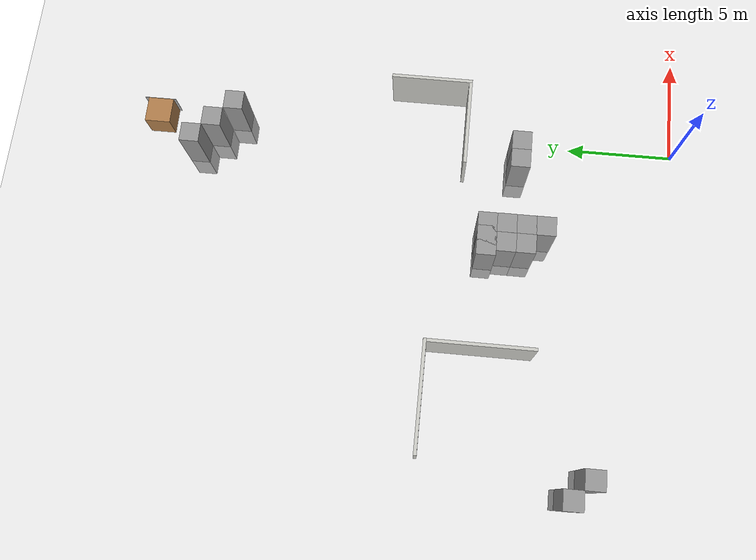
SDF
<sdf version="1.7">
 <world name="default">
  <model name="ground_plane">
   <static>1</static>
   <link name="link">
    <collision name="collision">
     <geometry><plane><normal>0 0 1</normal><size>100 100</size></plane></geometry>
     <surface><friction><ode><mu>100</mu><mu2>50</mu2></ode></friction></surface>
    </collision>
    <visual name="visual">
     <cast_shadows>0</cast_shadows>
     <geometry><plane><normal>0 0 1</normal><size>100 100</size></plane></geometry>
     <material>
      <script><uri>file://media/materials/scripts/gazebo.material</uri><name>Gazebo/Grey</name></script>
     </material>
    </visual>
   </link>
  </model>
  <model name="unit_box_0">
   <link name="link">
    <inertial>
     <mass>1</mass>
     <inertia>
      <ixx>0.166667</ixx>
      <ixy>0</ixy>
      <ixz>0</ixz>
      <iyy>0.166667</iyy>
      <iyz>0</iyz>
      <izz>0.166667</izz>
     </inertia>
    </inertial>
    <visual name="visual">
     <geometry><box><size>1.2 1.2 1.2</size></box></geometry>
     <material>
      <script><uri>file://media/materials/scripts/gazebo.material</uri><name>Gazebo/Wood</name></script>
      <shader type="pixel"><normal_map>__default__</normal_map></shader>
      <ambient>1 1 1 1</ambient>
      <diffuse>0.7 0.7 0.7 1</diffuse>
      <specular>0.01 0.01 0.01 1</specular>
      <emissive>0 0 0 1</emissive>
     </material>
    </visual>
    <collision name="collision">
     <geometry><box><size>1.2 1.2 1.2</size></box></geometry>
     <surface>
      <friction>
       <ode><mu>1</mu><mu2>1</mu2><fdir1>0 0 0</fdir1><slip1>0</slip1><slip2>0</slip2></ode>
       <torsional>
        <coefficient>1</coefficient>
        <patch_radius>0</patch_radius>
        <surface_radius>0</surface_radius>
        <use_patch_radius>1</use_patch_radius>
        <ode><slip>0</slip></ode>
       </torsional>
      </friction>
      <bounce><restitution_coefficient>0</restitution_coefficient><threshold>1e+06</threshold></bounce>
      <contact>
       <collide_without_contact>0</collide_without_contact>
       <collide_without_contact_bitmask>1</collide_without_contact_bitmask>
       <collide_bitmask>1</collide_bitmask>
       <ode>
        <soft_cfm>0</soft_cfm>
        <soft_erp>0.2</soft_erp>
        <kp>1e+13</kp>
        <kd>1</kd>
        <max_vel>0.01</max_vel>
        <min_depth>0</min_depth>
       </ode>
       <bullet>
        <split_impulse>1</split_impulse>
        <split_impulse_penetration_threshold>-0.01</split_impulse_penetration_threshold>
        <soft_cfm>0</soft_cfm>
        <soft_erp>0.2</soft_erp>
        <kp>1e+13</kp>
        <kd>1</kd>
       </bullet>
      </contact>
     </surface>
    </collision>
   </link>
   <static>0</static>
   <pose>-0.130923 24.9978 0.6 -0 -0 -0</pose>
  </model>
  <model name="unit_box_1_clone">
   <link name="link">
    <inertial>
     <mass>1</mass>
     <inertia>
      <ixx>0.166667</ixx>
      <ixy>0</ixy>
      <ixz>0</ixz>
      <iyy>0.166667</iyy>
      <iyz>0</iyz>
      <izz>0.166667</izz>
     </inertia>
    </inertial>
    <visual name="visual">
     <geometry><box><size>0.02 1.5 1.2</size></box></geometry>
     <material>
      <script><name>Gazebo/YunXi</name><uri>file://media/materials/scripts/gazebo.material</uri></script>
      <shader type="pixel"><normal_map>__default__</normal_map></shader>
      <ambient>1 1 1 1</ambient>
      <diffuse>0.7 0.7 0.7 1</diffuse>
      <specular>0.01 0.01 0.01 1</specular>
      <emissive>0 0 0 1</emissive>
     </material>
    </visual>
    <collision name="collision">
     <geometry><box><size>0.02 1.5 1.2</size></box></geometry>
     <surface>
      <friction>
       <ode><mu>1</mu><mu2>1</mu2><fdir1>0 0 0</fdir1><slip1>0</slip1><slip2>0</slip2></ode>
       <torsional>
        <coefficient>1</coefficient>
        <patch_radius>0</patch_radius>
        <surface_radius>0</surface_radius>
        <use_patch_radius>1</use_patch_radius>
        <ode><slip>0</slip></ode>
       </torsional>
      </friction>
      <bounce><restitution_coefficient>0</restitution_coefficient><threshold>1e+06</threshold></bounce>
      <contact>
       <collide_without_contact>0</collide_without_contact>
       <collide_without_contact_bitmask>1</collide_without_contact_bitmask>
       <collide_bitmask>1</collide_bitmask>
       <ode>
        <soft_cfm>0</soft_cfm>
        <soft_erp>0.2</soft_erp>
        <kp>1e+13</kp>
        <kd>1</kd>
        <max_vel>0.01</max_vel>
        <min_depth>0</min_depth>
       </ode>
       <bullet>
        <split_impulse>1</split_impulse>
        <split_impulse_penetration_threshold>-0.01</split_impulse_penetration_threshold>
        <soft_cfm>0</soft_cfm>
        <soft_erp>0.2</soft_erp>
        <kp>1e+13</kp>
        <kd>1</kd>
       </bullet>
      </contact>
     </surface>
    </collision>
   </link>
   <static>0</static>
   <pose>0.481184 25.0352 0.599995 7e-06 1.6e-05 0</pose>
  </model>
  <model name="Untitled_clone_clone_clone_clone">
   <link name="Wall_2_clone">
    <pose>-0.408024 -2.20516 0 0 -0 0</pose>
    <inertial>
     <mass>1</mass>
     <inertia><ixx>1</ixx><ixy>0</ixy><ixz>0</ixz><iyy>1</iyy><iyz>0</iyz><izz>1</izz></inertia>
    </inertial>
    <visual name="Wall_2_Visual">
     <pose>0 0 1.25 0 -0 0</pose>
     <geometry><box><size>4.2 0.15 2.5</size></box></geometry>
     <material>
      <script><uri>file://media/materials/scripts/gazebo.material</uri><name>Gazebo/CeilingTiled</name></script>
      <ambient>1 1 1 1</ambient>
      <shader type="pixel"><normal_map>__default__</normal_map></shader>
      <diffuse>1 1 1 1</diffuse>
      <specular>0 0 0 1</specular>
      <emissive>0 0 0 1</emissive>
     </material>
     <meta><layer>0</layer></meta>
    </visual>
    <collision name="Wall_2_Collision">
     <pose>0 0 1.25 0 -0 0</pose>
     <geometry><box><size>4.2 0.15 2.5</size></box></geometry>
     <surface>
      <friction>
       <ode><mu>1</mu><mu2>1</mu2><fdir1>0 0 0</fdir1><slip1>0</slip1><slip2>0</slip2></ode>
       <torsional>
        <coefficient>1</coefficient>
        <patch_radius>0</patch_radius>
        <surface_radius>0</surface_radius>
        <use_patch_radius>1</use_patch_radius>
        <ode><slip>0</slip></ode>
       </torsional>
      </friction>
      <bounce><restitution_coefficient>0</restitution_coefficient><threshold>1e+06</threshold></bounce>
      <contact>
       <collide_without_contact>0</collide_without_contact>
       <collide_without_contact_bitmask>1</collide_without_contact_bitmask>
       <collide_bitmask>1</collide_bitmask>
       <ode>
        <soft_cfm>0</soft_cfm>
        <soft_erp>0.2</soft_erp>
        <kp>1e+13</kp>
        <kd>1</kd>
        <max_vel>0.01</max_vel>
        <min_depth>0</min_depth>
       </ode>
       <bullet>
        <split_impulse>1</split_impulse>
        <split_impulse_penetration_threshold>-0.01</split_impulse_penetration_threshold>
        <soft_cfm>0</soft_cfm>
        <soft_erp>0.2</soft_erp>
        <kp>1e+13</kp>
        <kd>1</kd>
       </bullet>
      </contact>
     </surface>
    </collision>
   </link>
   <link name="Wall_2_clone_clone_clone_clone_clone">
    <pose>1.61868 -0.372186 0 0 -0 1.57</pose>
    <inertial>
     <mass>1</mass>
     <inertia><ixx>1</ixx><ixy>0</ixy><ixz>0</ixz><iyy>1</iyy><iyz>0</iyz><izz>1</izz></inertia>
    </inertial>
    <visual name="Wall_2_Visual">
     <pose>0 0 1.25 0 -0 0</pose>
     <geometry><box><size>3.8 0.15 2.5</size></box></geometry>
     <material>
      <script><uri>file://media/materials/scripts/gazebo.material</uri><name>Gazebo/CeilingTiled</name></script>
      <ambient>1 1 1 1</ambient>
      <shader type="pixel"><normal_map>__default__</normal_map></shader>
      <diffuse>1 1 1 1</diffuse>
      <specular>0 0 0 1</specular>
      <emissive>0 0 0 1</emissive>
     </material>
     <meta><layer>0</layer></meta>
    </visual>
    <collision name="Wall_2_Collision">
     <pose>0 0 1.25 0 -0 0</pose>
     <geometry><box><size>3.8 0.15 2.5</size></box></geometry>
     <surface>
      <friction>
       <ode><mu>1</mu><mu2>1</mu2><fdir1>0 0 0</fdir1><slip1>0</slip1><slip2>0</slip2></ode>
       <torsional>
        <coefficient>1</coefficient>
        <patch_radius>0</patch_radius>
        <surface_radius>0</surface_radius>
        <use_patch_radius>1</use_patch_radius>
        <ode><slip>0</slip></ode>
       </torsional>
      </friction>
      <bounce><restitution_coefficient>0</restitution_coefficient><threshold>1e+06</threshold></bounce>
      <contact>
       <collide_without_contact>0</collide_without_contact>
       <collide_without_contact_bitmask>1</collide_without_contact_bitmask>
       <collide_bitmask>1</collide_bitmask>
       <ode>
        <soft_cfm>0</soft_cfm>
        <soft_erp>0.2</soft_erp>
        <kp>1e+13</kp>
        <kd>1</kd>
        <max_vel>0.01</max_vel>
        <min_depth>0</min_depth>
       </ode>
       <bullet>
        <split_impulse>1</split_impulse>
        <split_impulse_penetration_threshold>-0.01</split_impulse_penetration_threshold>
        <soft_cfm>0</soft_cfm>
        <soft_erp>0.2</soft_erp>
        <kp>1e+13</kp>
        <kd>1</kd>
       </bullet>
      </contact>
     </surface>
    </collision>
   </link>
   <static>1</static>
   <pose>0.41018 12.2822 0 0 -0 0</pose>
  </model>
  <model name="unit_box">
   <link name="link_clone_0_clone_clone_0">
    <inertial>
     <mass>1</mass>
     <inertia>
      <ixx>0.166667</ixx>
      <ixy>0</ixy>
      <ixz>0</ixz>
      <iyy>0.166667</iyy>
      <iyz>0</iyz>
      <izz>0.166667</izz>
     </inertia>
    </inertial>
    <pose>-9.13666 8.99649 0 0 -0 0</pose>
    <visual name="visual">
     <geometry><box><size>0.9 0.9 4</size></box></geometry>
     <material>
      <script><name>Gazebo/Grey</name><uri>file://media/materials/scripts/gazebo.material</uri></script>
      <shader type="pixel"><normal_map>__default__</normal_map></shader>
      <ambient>0.3 0.3 0.3 1</ambient>
      <diffuse>0.7 0.7 0.7 1</diffuse>
      <specular>0.01 0.01 0.01 1</specular>
      <emissive>0 0 0 1</emissive>
     </material>
    </visual>
    <collision name="collision">
     <geometry><box><size>0.9 0.9 4</size></box></geometry>
     <surface>
      <friction>
       <ode><mu>1</mu><mu2>1</mu2><fdir1>0 0 0</fdir1><slip1>0</slip1><slip2>0</slip2></ode>
       <torsional>
        <coefficient>1</coefficient>
        <patch_radius>0</patch_radius>
        <surface_radius>0</surface_radius>
        <use_patch_radius>1</use_patch_radius>
        <ode><slip>0</slip></ode>
       </torsional>
      </friction>
      <bounce><restitution_coefficient>0</restitution_coefficient><threshold>1e+06</threshold></bounce>
      <contact>
       <collide_without_contact>0</collide_without_contact>
       <collide_without_contact_bitmask>1</collide_without_contact_bitmask>
       <collide_bitmask>1</collide_bitmask>
       <ode>
        <soft_cfm>0</soft_cfm>
        <soft_erp>0.2</soft_erp>
        <kp>1e+13</kp>
        <kd>1</kd>
        <max_vel>0.01</max_vel>
        <min_depth>0</min_depth>
       </ode>
       <bullet>
        <split_impulse>1</split_impulse>
        <split_impulse_penetration_threshold>-0.01</split_impulse_penetration_threshold>
        <soft_cfm>0</soft_cfm>
        <soft_erp>0.2</soft_erp>
        <kp>1e+13</kp>
        <kd>1</kd>
       </bullet>
      </contact>
     </surface>
    </collision>
   </link>
   <link name="link_clone_0_clone_clone_1">
    <inertial>
     <mass>1</mass>
     <inertia>
      <ixx>0.166667</ixx>
      <ixy>0</ixy>
      <ixz>0</ixz>
      <iyy>0.166667</iyy>
      <iyz>0</iyz>
      <izz>0.166667</izz>
     </inertia>
    </inertial>
    <pose>-8.25334 8.99525 0 0 -0 0</pose>
    <visual name="visual">
     <geometry><box><size>0.9 0.9 4</size></box></geometry>
     <material>
      <script><name>Gazebo/Grey</name><uri>file://media/materials/scripts/gazebo.material</uri></script>
      <shader type="pixel"><normal_map>__default__</normal_map></shader>
      <ambient>0.3 0.3 0.3 1</ambient>
      <diffuse>0.7 0.7 0.7 1</diffuse>
      <specular>0.01 0.01 0.01 1</specular>
      <emissive>0 0 0 1</emissive>
     </material>
    </visual>
    <collision name="collision">
     <geometry><box><size>0.9 0.9 4</size></box></geometry>
     <surface>
      <friction>
       <ode><mu>1</mu><mu2>1</mu2><fdir1>0 0 0</fdir1><slip1>0</slip1><slip2>0</slip2></ode>
       <torsional>
        <coefficient>1</coefficient>
        <patch_radius>0</patch_radius>
        <surface_radius>0</surface_radius>
        <use_patch_radius>1</use_patch_radius>
        <ode><slip>0</slip></ode>
       </torsional>
      </friction>
      <bounce><restitution_coefficient>0</restitution_coefficient><threshold>1e+06</threshold></bounce>
      <contact>
       <collide_without_contact>0</collide_without_contact>
       <collide_without_contact_bitmask>1</collide_without_contact_bitmask>
       <collide_bitmask>1</collide_bitmask>
       <ode>
        <soft_cfm>0</soft_cfm>
        <soft_erp>0.2</soft_erp>
        <kp>1e+13</kp>
        <kd>1</kd>
        <max_vel>0.01</max_vel>
        <min_depth>0</min_depth>
       </ode>
       <bullet>
        <split_impulse>1</split_impulse>
        <split_impulse_penetration_threshold>-0.01</split_impulse_penetration_threshold>
        <soft_cfm>0</soft_cfm>
        <soft_erp>0.2</soft_erp>
        <kp>1e+13</kp>
        <kd>1</kd>
       </bullet>
      </contact>
     </surface>
    </collision>
   </link>
   <link name="link_clone_0_clone_clone_3_clone_2_clone_5">
    <inertial>
     <mass>1</mass>
     <inertia>
      <ixx>0.166667</ixx>
      <ixy>0</ixy>
      <ixz>0</ixz>
      <iyy>0.166667</iyy>
      <iyz>0</iyz>
      <izz>0.166667</izz>
     </inertia>
    </inertial>
    <pose>-9.21047 24.4275 0 0 -0 0</pose>
    <visual name="visual">
     <geometry><box><size>0.9 0.9 4</size></box></geometry>
     <material>
      <script><name>Gazebo/Grey</name><uri>file://media/materials/scripts/gazebo.material</uri></script>
      <shader type="pixel"><normal_map>__default__</normal_map></shader>
      <ambient>0.3 0.3 0.3 1</ambient>
      <diffuse>0.7 0.7 0.7 1</diffuse>
      <specular>0.01 0.01 0.01 1</specular>
      <emissive>0 0 0 1</emissive>
     </material>
    </visual>
    <collision name="collision">
     <geometry><box><size>0.9 0.9 4</size></box></geometry>
     <surface>
      <friction>
       <ode><mu>1</mu><mu2>1</mu2><fdir1>0 0 0</fdir1><slip1>0</slip1><slip2>0</slip2></ode>
       <torsional>
        <coefficient>1</coefficient>
        <patch_radius>0</patch_radius>
        <surface_radius>0</surface_radius>
        <use_patch_radius>1</use_patch_radius>
        <ode><slip>0</slip></ode>
       </torsional>
      </friction>
      <bounce><restitution_coefficient>0</restitution_coefficient><threshold>1e+06</threshold></bounce>
      <contact>
       <collide_without_contact>0</collide_without_contact>
       <collide_without_contact_bitmask>1</collide_without_contact_bitmask>
       <collide_bitmask>1</collide_bitmask>
       <ode>
        <soft_cfm>0</soft_cfm>
        <soft_erp>0.2</soft_erp>
        <kp>1e+13</kp>
        <kd>1</kd>
        <max_vel>0.01</max_vel>
        <min_depth>0</min_depth>
       </ode>
       <bullet>
        <split_impulse>1</split_impulse>
        <split_impulse_penetration_threshold>-0.01</split_impulse_penetration_threshold>
        <soft_cfm>0</soft_cfm>
        <soft_erp>0.2</soft_erp>
        <kp>1e+13</kp>
        <kd>1</kd>
       </bullet>
      </contact>
     </surface>
    </collision>
   </link>
   <link name="link_clone_0_clone_clone_3_clone_2_clone_6">
    <inertial>
     <mass>1</mass>
     <inertia>
      <ixx>0.166667</ixx>
      <ixy>0</ixy>
      <ixz>0</ixz>
      <iyy>0.166667</iyy>
      <iyz>0</iyz>
      <izz>0.166667</izz>
     </inertia>
    </inertial>
    <pose>-8.31416 23.5425 0 0 -0 0</pose>
    <visual name="visual">
     <geometry><box><size>0.9 0.9 4</size></box></geometry>
     <material>
      <script><name>Gazebo/Grey</name><uri>file://media/materials/scripts/gazebo.material</uri></script>
      <shader type="pixel"><normal_map>__default__</normal_map></shader>
      <ambient>0.3 0.3 0.3 1</ambient>
      <diffuse>0.7 0.7 0.7 1</diffuse>
      <specular>0.01 0.01 0.01 1</specular>
      <emissive>0 0 0 1</emissive>
     </material>
    </visual>
    <collision name="collision">
     <geometry><box><size>0.9 0.9 4</size></box></geometry>
     <surface>
      <friction>
       <ode><mu>1</mu><mu2>1</mu2><fdir1>0 0 0</fdir1><slip1>0</slip1><slip2>0</slip2></ode>
       <torsional>
        <coefficient>1</coefficient>
        <patch_radius>0</patch_radius>
        <surface_radius>0</surface_radius>
        <use_patch_radius>1</use_patch_radius>
        <ode><slip>0</slip></ode>
       </torsional>
      </friction>
      <bounce><restitution_coefficient>0</restitution_coefficient><threshold>1e+06</threshold></bounce>
      <contact>
       <collide_without_contact>0</collide_without_contact>
       <collide_without_contact_bitmask>1</collide_without_contact_bitmask>
       <collide_bitmask>1</collide_bitmask>
       <ode>
        <soft_cfm>0</soft_cfm>
        <soft_erp>0.2</soft_erp>
        <kp>1e+13</kp>
        <kd>1</kd>
        <max_vel>0.01</max_vel>
        <min_depth>0</min_depth>
       </ode>
       <bullet>
        <split_impulse>1</split_impulse>
        <split_impulse_penetration_threshold>-0.01</split_impulse_penetration_threshold>
        <soft_cfm>0</soft_cfm>
        <soft_erp>0.2</soft_erp>
        <kp>1e+13</kp>
        <kd>1</kd>
       </bullet>
      </contact>
     </surface>
    </collision>
   </link>
   <link name="link_clone_0_clone_clone_3_clone_2_clone_7">
    <inertial>
     <mass>1</mass>
     <inertia>
      <ixx>0.166667</ixx>
      <ixy>0</ixy>
      <ixz>0</ixz>
      <iyy>0.166667</iyy>
      <iyz>0</iyz>
      <izz>0.166667</izz>
     </inertia>
    </inertial>
    <pose>-7.39653 22.6366 0 0 -0 0</pose>
    <visual name="visual">
     <geometry><box><size>0.9 0.9 4</size></box></geometry>
     <material>
      <script><name>Gazebo/Grey</name><uri>file://media/materials/scripts/gazebo.material</uri></script>
      <shader type="pixel"><normal_map>__default__</normal_map></shader>
      <ambient>0.3 0.3 0.3 1</ambient>
      <diffuse>0.7 0.7 0.7 1</diffuse>
      <specular>0.01 0.01 0.01 1</specular>
      <emissive>0 0 0 1</emissive>
     </material>
    </visual>
    <collision name="collision">
     <geometry><box><size>0.9 0.9 4</size></box></geometry>
     <surface>
      <friction>
       <ode><mu>1</mu><mu2>1</mu2><fdir1>0 0 0</fdir1><slip1>0</slip1><slip2>0</slip2></ode>
       <torsional>
        <coefficient>1</coefficient>
        <patch_radius>0</patch_radius>
        <surface_radius>0</surface_radius>
        <use_patch_radius>1</use_patch_radius>
        <ode><slip>0</slip></ode>
       </torsional>
      </friction>
      <bounce><restitution_coefficient>0</restitution_coefficient><threshold>1e+06</threshold></bounce>
      <contact>
       <collide_without_contact>0</collide_without_contact>
       <collide_without_contact_bitmask>1</collide_without_contact_bitmask>
       <collide_bitmask>1</collide_bitmask>
       <ode>
        <soft_cfm>0</soft_cfm>
        <soft_erp>0.2</soft_erp>
        <kp>1e+13</kp>
        <kd>1</kd>
        <max_vel>0.01</max_vel>
        <min_depth>0</min_depth>
       </ode>
       <bullet>
        <split_impulse>1</split_impulse>
        <split_impulse_penetration_threshold>-0.01</split_impulse_penetration_threshold>
        <soft_cfm>0</soft_cfm>
        <soft_erp>0.2</soft_erp>
        <kp>1e+13</kp>
        <kd>1</kd>
       </bullet>
      </contact>
     </surface>
    </collision>
   </link>
   <static>0</static>
   <pose>7.51627 -1.49726 0.45 0 -0 0</pose>
  </model>
  <model name="unit_box_clone">
   <link name="link_clone_0_clone_clone_3_clone_0">
    <inertial>
     <mass>1</mass>
     <inertia>
      <ixx>0.166667</ixx>
      <ixy>0</ixy>
      <ixz>0</ixz>
      <iyy>0.166667</iyy>
      <iyz>0</iyz>
      <izz>0.166667</izz>
     </inertia>
    </inertial>
    <pose>1.46921 28.7387 0 0 -0 0</pose>
    <visual name="visual">
     <geometry><box><size>0.9 0.9 4</size></box></geometry>
     <material>
      <script><name>Gazebo/Grey</name><uri>file://media/materials/scripts/gazebo.material</uri></script>
      <shader type="pixel"><normal_map>__default__</normal_map></shader>
      <ambient>0.3 0.3 0.3 1</ambient>
      <diffuse>0.7 0.7 0.7 1</diffuse>
      <specular>0.01 0.01 0.01 1</specular>
      <emissive>0 0 0 1</emissive>
     </material>
    </visual>
    <collision name="collision">
     <geometry><box><size>0.9 0.9 4</size></box></geometry>
     <surface>
      <friction>
       <ode><mu>1</mu><mu2>1</mu2><fdir1>0 0 0</fdir1><slip1>0</slip1><slip2>0</slip2></ode>
       <torsional>
        <coefficient>1</coefficient>
        <patch_radius>0</patch_radius>
        <surface_radius>0</surface_radius>
        <use_patch_radius>1</use_patch_radius>
        <ode><slip>0</slip></ode>
       </torsional>
      </friction>
      <bounce><restitution_coefficient>0</restitution_coefficient><threshold>1e+06</threshold></bounce>
      <contact>
       <collide_without_contact>0</collide_without_contact>
       <collide_without_contact_bitmask>1</collide_without_contact_bitmask>
       <collide_bitmask>1</collide_bitmask>
       <ode>
        <soft_cfm>0</soft_cfm>
        <soft_erp>0.2</soft_erp>
        <kp>1e+13</kp>
        <kd>1</kd>
        <max_vel>0.01</max_vel>
        <min_depth>0</min_depth>
       </ode>
       <bullet>
        <split_impulse>1</split_impulse>
        <split_impulse_penetration_threshold>-0.01</split_impulse_penetration_threshold>
        <soft_cfm>0</soft_cfm>
        <soft_erp>0.2</soft_erp>
        <kp>1e+13</kp>
        <kd>1</kd>
       </bullet>
      </contact>
     </surface>
    </collision>
   </link>
   <link name="link_clone_0_clone_clone_3_clone_1">
    <inertial>
     <mass>1</mass>
     <inertia>
      <ixx>0.166667</ixx>
      <ixy>0</ixy>
      <ixz>0</ixz>
      <iyy>0.166667</iyy>
      <iyz>0</iyz>
      <izz>0.166667</izz>
     </inertia>
    </inertial>
    <pose>1.9538 28.7358 0 0 -0 0</pose>
    <visual name="visual">
     <geometry><box><size>0.9 0.9 4</size></box></geometry>
     <material>
      <script><name>Gazebo/Grey</name><uri>file://media/materials/scripts/gazebo.material</uri></script>
      <shader type="pixel"><normal_map>__default__</normal_map></shader>
      <ambient>0.3 0.3 0.3 1</ambient>
      <diffuse>0.7 0.7 0.7 1</diffuse>
      <specular>0.01 0.01 0.01 1</specular>
      <emissive>0 0 0 1</emissive>
     </material>
    </visual>
    <collision name="collision">
     <geometry><box><size>0.9 0.9 4</size></box></geometry>
     <surface>
      <friction>
       <ode><mu>1</mu><mu2>1</mu2><fdir1>0 0 0</fdir1><slip1>0</slip1><slip2>0</slip2></ode>
       <torsional>
        <coefficient>1</coefficient>
        <patch_radius>0</patch_radius>
        <surface_radius>0</surface_radius>
        <use_patch_radius>1</use_patch_radius>
        <ode><slip>0</slip></ode>
       </torsional>
      </friction>
      <bounce><restitution_coefficient>0</restitution_coefficient><threshold>1e+06</threshold></bounce>
      <contact>
       <collide_without_contact>0</collide_without_contact>
       <collide_without_contact_bitmask>1</collide_without_contact_bitmask>
       <collide_bitmask>1</collide_bitmask>
       <ode>
        <soft_cfm>0</soft_cfm>
        <soft_erp>0.2</soft_erp>
        <kp>1e+13</kp>
        <kd>1</kd>
        <max_vel>0.01</max_vel>
        <min_depth>0</min_depth>
       </ode>
       <bullet>
        <split_impulse>1</split_impulse>
        <split_impulse_penetration_threshold>-0.01</split_impulse_penetration_threshold>
        <soft_cfm>0</soft_cfm>
        <soft_erp>0.2</soft_erp>
        <kp>1e+13</kp>
        <kd>1</kd>
       </bullet>
      </contact>
     </surface>
    </collision>
   </link>
   <link name="link_clone_0_clone_clone_3_clone_2_clone">
    <inertial>
     <mass>1</mass>
     <inertia>
      <ixx>0.166667</ixx>
      <ixy>0</ixy>
      <ixz>0</ixz>
      <iyy>0.166667</iyy>
      <iyz>0</iyz>
      <izz>0.166667</izz>
     </inertia>
    </inertial>
    <pose>2.59172 27.8668 0 0 -0 0</pose>
    <visual name="visual">
     <geometry><box><size>0.9 0.9 4</size></box></geometry>
     <material>
      <script><name>Gazebo/Grey</name><uri>file://media/materials/scripts/gazebo.material</uri></script>
      <shader type="pixel"><normal_map>__default__</normal_map></shader>
      <ambient>0.3 0.3 0.3 1</ambient>
      <diffuse>0.7 0.7 0.7 1</diffuse>
      <specular>0.01 0.01 0.01 1</specular>
      <emissive>0 0 0 1</emissive>
     </material>
    </visual>
    <collision name="collision">
     <geometry><box><size>0.9 0.9 4</size></box></geometry>
     <surface>
      <friction>
       <ode><mu>1</mu><mu2>1</mu2><fdir1>0 0 0</fdir1><slip1>0</slip1><slip2>0</slip2></ode>
       <torsional>
        <coefficient>1</coefficient>
        <patch_radius>0</patch_radius>
        <surface_radius>0</surface_radius>
        <use_patch_radius>1</use_patch_radius>
        <ode><slip>0</slip></ode>
       </torsional>
      </friction>
      <bounce><restitution_coefficient>0</restitution_coefficient><threshold>1e+06</threshold></bounce>
      <contact>
       <collide_without_contact>0</collide_without_contact>
       <collide_without_contact_bitmask>1</collide_without_contact_bitmask>
       <collide_bitmask>1</collide_bitmask>
       <ode>
        <soft_cfm>0</soft_cfm>
        <soft_erp>0.2</soft_erp>
        <kp>1e+13</kp>
        <kd>1</kd>
        <max_vel>0.01</max_vel>
        <min_depth>0</min_depth>
       </ode>
       <bullet>
        <split_impulse>1</split_impulse>
        <split_impulse_penetration_threshold>-0.01</split_impulse_penetration_threshold>
        <soft_cfm>0</soft_cfm>
        <soft_erp>0.2</soft_erp>
        <kp>1e+13</kp>
        <kd>1</kd>
       </bullet>
      </contact>
     </surface>
    </collision>
   </link>
   <link name="link_clone_0_clone_clone_3_clone_2_clone_0">
    <inertial>
     <mass>1</mass>
     <inertia>
      <ixx>0.166667</ixx>
      <ixy>0</ixy>
      <ixz>0</ixz>
      <iyy>0.166667</iyy>
      <iyz>0</iyz>
      <izz>0.166667</izz>
     </inertia>
    </inertial>
    <pose>2.58995 26.9736 0 0 -0 0</pose>
    <visual name="visual">
     <geometry><box><size>0.9 0.9 4</size></box></geometry>
     <material>
      <script><name>Gazebo/Grey</name><uri>file://media/materials/scripts/gazebo.material</uri></script>
      <shader type="pixel"><normal_map>__default__</normal_map></shader>
      <ambient>0.3 0.3 0.3 1</ambient>
      <diffuse>0.7 0.7 0.7 1</diffuse>
      <specular>0.01 0.01 0.01 1</specular>
      <emissive>0 0 0 1</emissive>
     </material>
    </visual>
    <collision name="collision">
     <geometry><box><size>0.9 0.9 4</size></box></geometry>
     <surface>
      <friction>
       <ode><mu>1</mu><mu2>1</mu2><fdir1>0 0 0</fdir1><slip1>0</slip1><slip2>0</slip2></ode>
       <torsional>
        <coefficient>1</coefficient>
        <patch_radius>0</patch_radius>
        <surface_radius>0</surface_radius>
        <use_patch_radius>1</use_patch_radius>
        <ode><slip>0</slip></ode>
       </torsional>
      </friction>
      <bounce><restitution_coefficient>0</restitution_coefficient><threshold>1e+06</threshold></bounce>
      <contact>
       <collide_without_contact>0</collide_without_contact>
       <collide_without_contact_bitmask>1</collide_without_contact_bitmask>
       <collide_bitmask>1</collide_bitmask>
       <ode>
        <soft_cfm>0</soft_cfm>
        <soft_erp>0.2</soft_erp>
        <kp>1e+13</kp>
        <kd>1</kd>
        <max_vel>0.01</max_vel>
        <min_depth>0</min_depth>
       </ode>
       <bullet>
        <split_impulse>1</split_impulse>
        <split_impulse_penetration_threshold>-0.01</split_impulse_penetration_threshold>
        <soft_cfm>0</soft_cfm>
        <soft_erp>0.2</soft_erp>
        <kp>1e+13</kp>
        <kd>1</kd>
       </bullet>
      </contact>
     </surface>
    </collision>
   </link>
   <link name="link_clone_0_clone_clone_3_clone_2_clone_1">
    <inertial>
     <mass>1</mass>
     <inertia>
      <ixx>0.166667</ixx>
      <ixy>0</ixy>
      <ixz>0</ixz>
      <iyy>0.166667</iyy>
      <iyz>0</iyz>
      <izz>0.166667</izz>
     </inertia>
    </inertial>
    <pose>2.59589 26.0894 0 0 -0 0</pose>
    <visual name="visual">
     <geometry><box><size>0.9 0.9 4</size></box></geometry>
     <material>
      <script><name>Gazebo/Grey</name><uri>file://media/materials/scripts/gazebo.material</uri></script>
      <shader type="pixel"><normal_map>__default__</normal_map></shader>
      <ambient>0.3 0.3 0.3 1</ambient>
      <diffuse>0.7 0.7 0.7 1</diffuse>
      <specular>0.01 0.01 0.01 1</specular>
      <emissive>0 0 0 1</emissive>
     </material>
    </visual>
    <collision name="collision">
     <geometry><box><size>0.9 0.9 4</size></box></geometry>
     <surface>
      <friction>
       <ode><mu>1</mu><mu2>1</mu2><fdir1>0 0 0</fdir1><slip1>0</slip1><slip2>0</slip2></ode>
       <torsional>
        <coefficient>1</coefficient>
        <patch_radius>0</patch_radius>
        <surface_radius>0</surface_radius>
        <use_patch_radius>1</use_patch_radius>
        <ode><slip>0</slip></ode>
       </torsional>
      </friction>
      <bounce><restitution_coefficient>0</restitution_coefficient><threshold>1e+06</threshold></bounce>
      <contact>
       <collide_without_contact>0</collide_without_contact>
       <collide_without_contact_bitmask>1</collide_without_contact_bitmask>
       <collide_bitmask>1</collide_bitmask>
       <ode>
        <soft_cfm>0</soft_cfm>
        <soft_erp>0.2</soft_erp>
        <kp>1e+13</kp>
        <kd>1</kd>
        <max_vel>0.01</max_vel>
        <min_depth>0</min_depth>
       </ode>
       <bullet>
        <split_impulse>1</split_impulse>
        <split_impulse_penetration_threshold>-0.01</split_impulse_penetration_threshold>
        <soft_cfm>0</soft_cfm>
        <soft_erp>0.2</soft_erp>
        <kp>1e+13</kp>
        <kd>1</kd>
       </bullet>
      </contact>
     </surface>
    </collision>
   </link>
   <link name="link_clone_0_clone_clone_3_clone_2_clone_2">
    <inertial>
     <mass>1</mass>
     <inertia>
      <ixx>0.166667</ixx>
      <ixy>0</ixy>
      <ixz>0</ixz>
      <iyy>0.166667</iyy>
      <iyz>0</iyz>
      <izz>0.166667</izz>
     </inertia>
    </inertial>
    <pose>1.70355 27.8505 0 0 -0 0</pose>
    <visual name="visual">
     <geometry><box><size>0.9 0.9 4</size></box></geometry>
     <material>
      <script><name>Gazebo/Grey</name><uri>file://media/materials/scripts/gazebo.material</uri></script>
      <shader type="pixel"><normal_map>__default__</normal_map></shader>
      <ambient>0.3 0.3 0.3 1</ambient>
      <diffuse>0.7 0.7 0.7 1</diffuse>
      <specular>0.01 0.01 0.01 1</specular>
      <emissive>0 0 0 1</emissive>
     </material>
    </visual>
    <collision name="collision">
     <geometry><box><size>0.9 0.9 4</size></box></geometry>
     <surface>
      <friction>
       <ode><mu>1</mu><mu2>1</mu2><fdir1>0 0 0</fdir1><slip1>0</slip1><slip2>0</slip2></ode>
       <torsional>
        <coefficient>1</coefficient>
        <patch_radius>0</patch_radius>
        <surface_radius>0</surface_radius>
        <use_patch_radius>1</use_patch_radius>
        <ode><slip>0</slip></ode>
       </torsional>
      </friction>
      <bounce><restitution_coefficient>0</restitution_coefficient><threshold>1e+06</threshold></bounce>
      <contact>
       <collide_without_contact>0</collide_without_contact>
       <collide_without_contact_bitmask>1</collide_without_contact_bitmask>
       <collide_bitmask>1</collide_bitmask>
       <ode>
        <soft_cfm>0</soft_cfm>
        <soft_erp>0.2</soft_erp>
        <kp>1e+13</kp>
        <kd>1</kd>
        <max_vel>0.01</max_vel>
        <min_depth>0</min_depth>
       </ode>
       <bullet>
        <split_impulse>1</split_impulse>
        <split_impulse_penetration_threshold>-0.01</split_impulse_penetration_threshold>
        <soft_cfm>0</soft_cfm>
        <soft_erp>0.2</soft_erp>
        <kp>1e+13</kp>
        <kd>1</kd>
       </bullet>
      </contact>
     </surface>
    </collision>
   </link>
   <link name="link_clone_0_clone_clone_3_clone_2_clone_3">
    <inertial>
     <mass>1</mass>
     <inertia>
      <ixx>0.166667</ixx>
      <ixy>0</ixy>
      <ixz>0</ixz>
      <iyy>0.166667</iyy>
      <iyz>0</iyz>
      <izz>0.166667</izz>
     </inertia>
    </inertial>
    <pose>1.70338 26.953 0 0 -0 0</pose>
    <visual name="visual">
     <geometry><box><size>0.9 0.9 4</size></box></geometry>
     <material>
      <script><name>Gazebo/Grey</name><uri>file://media/materials/scripts/gazebo.material</uri></script>
      <shader type="pixel"><normal_map>__default__</normal_map></shader>
      <ambient>0.3 0.3 0.3 1</ambient>
      <diffuse>0.7 0.7 0.7 1</diffuse>
      <specular>0.01 0.01 0.01 1</specular>
      <emissive>0 0 0 1</emissive>
     </material>
    </visual>
    <collision name="collision">
     <geometry><box><size>0.9 0.9 4</size></box></geometry>
     <surface>
      <friction>
       <ode><mu>1</mu><mu2>1</mu2><fdir1>0 0 0</fdir1><slip1>0</slip1><slip2>0</slip2></ode>
       <torsional>
        <coefficient>1</coefficient>
        <patch_radius>0</patch_radius>
        <surface_radius>0</surface_radius>
        <use_patch_radius>1</use_patch_radius>
        <ode><slip>0</slip></ode>
       </torsional>
      </friction>
      <bounce><restitution_coefficient>0</restitution_coefficient><threshold>1e+06</threshold></bounce>
      <contact>
       <collide_without_contact>0</collide_without_contact>
       <collide_without_contact_bitmask>1</collide_without_contact_bitmask>
       <collide_bitmask>1</collide_bitmask>
       <ode>
        <soft_cfm>0</soft_cfm>
        <soft_erp>0.2</soft_erp>
        <kp>1e+13</kp>
        <kd>1</kd>
        <max_vel>0.01</max_vel>
        <min_depth>0</min_depth>
       </ode>
       <bullet>
        <split_impulse>1</split_impulse>
        <split_impulse_penetration_threshold>-0.01</split_impulse_penetration_threshold>
        <soft_cfm>0</soft_cfm>
        <soft_erp>0.2</soft_erp>
        <kp>1e+13</kp>
        <kd>1</kd>
       </bullet>
      </contact>
     </surface>
    </collision>
   </link>
   <link name="link_clone_0_clone_clone_3_clone_2_clone_5">
    <inertial>
     <mass>1</mass>
     <inertia>
      <ixx>0.166667</ixx>
      <ixy>0</ixy>
      <ixz>0</ixz>
      <iyy>0.166667</iyy>
      <iyz>0</iyz>
      <izz>0.166667</izz>
     </inertia>
    </inertial>
    <pose>-9.21047 24.4275 0 0 -0 0</pose>
    <visual name="visual">
     <geometry><box><size>0.9 0.9 4</size></box></geometry>
     <material>
      <script><name>Gazebo/Grey</name><uri>file://media/materials/scripts/gazebo.material</uri></script>
      <shader type="pixel"><normal_map>__default__</normal_map></shader>
      <ambient>0.3 0.3 0.3 1</ambient>
      <diffuse>0.7 0.7 0.7 1</diffuse>
      <specular>0.01 0.01 0.01 1</specular>
      <emissive>0 0 0 1</emissive>
     </material>
    </visual>
    <collision name="collision">
     <geometry><box><size>0.9 0.9 4</size></box></geometry>
     <surface>
      <friction>
       <ode><mu>1</mu><mu2>1</mu2><fdir1>0 0 0</fdir1><slip1>0</slip1><slip2>0</slip2></ode>
       <torsional>
        <coefficient>1</coefficient>
        <patch_radius>0</patch_radius>
        <surface_radius>0</surface_radius>
        <use_patch_radius>1</use_patch_radius>
        <ode><slip>0</slip></ode>
       </torsional>
      </friction>
      <bounce><restitution_coefficient>0</restitution_coefficient><threshold>1e+06</threshold></bounce>
      <contact>
       <collide_without_contact>0</collide_without_contact>
       <collide_without_contact_bitmask>1</collide_without_contact_bitmask>
       <collide_bitmask>1</collide_bitmask>
       <ode>
        <soft_cfm>0</soft_cfm>
        <soft_erp>0.2</soft_erp>
        <kp>1e+13</kp>
        <kd>1</kd>
        <max_vel>0.01</max_vel>
        <min_depth>0</min_depth>
       </ode>
       <bullet>
        <split_impulse>1</split_impulse>
        <split_impulse_penetration_threshold>-0.01</split_impulse_penetration_threshold>
        <soft_cfm>0</soft_cfm>
        <soft_erp>0.2</soft_erp>
        <kp>1e+13</kp>
        <kd>1</kd>
       </bullet>
      </contact>
     </surface>
    </collision>
   </link>
   <link name="link_clone_0_clone_clone_3_clone_2_clone_6">
    <inertial>
     <mass>1</mass>
     <inertia>
      <ixx>0.166667</ixx>
      <ixy>0</ixy>
      <ixz>0</ixz>
      <iyy>0.166667</iyy>
      <iyz>0</iyz>
      <izz>0.166667</izz>
     </inertia>
    </inertial>
    <pose>-8.31416 23.5425 0 0 -0 0</pose>
    <visual name="visual">
     <geometry><box><size>0.9 0.9 4</size></box></geometry>
     <material>
      <script><name>Gazebo/Grey</name><uri>file://media/materials/scripts/gazebo.material</uri></script>
      <shader type="pixel"><normal_map>__default__</normal_map></shader>
      <ambient>0.3 0.3 0.3 1</ambient>
      <diffuse>0.7 0.7 0.7 1</diffuse>
      <specular>0.01 0.01 0.01 1</specular>
      <emissive>0 0 0 1</emissive>
     </material>
    </visual>
    <collision name="collision">
     <geometry><box><size>0.9 0.9 4</size></box></geometry>
     <surface>
      <friction>
       <ode><mu>1</mu><mu2>1</mu2><fdir1>0 0 0</fdir1><slip1>0</slip1><slip2>0</slip2></ode>
       <torsional>
        <coefficient>1</coefficient>
        <patch_radius>0</patch_radius>
        <surface_radius>0</surface_radius>
        <use_patch_radius>1</use_patch_radius>
        <ode><slip>0</slip></ode>
       </torsional>
      </friction>
      <bounce><restitution_coefficient>0</restitution_coefficient><threshold>1e+06</threshold></bounce>
      <contact>
       <collide_without_contact>0</collide_without_contact>
       <collide_without_contact_bitmask>1</collide_without_contact_bitmask>
       <collide_bitmask>1</collide_bitmask>
       <ode>
        <soft_cfm>0</soft_cfm>
        <soft_erp>0.2</soft_erp>
        <kp>1e+13</kp>
        <kd>1</kd>
        <max_vel>0.01</max_vel>
        <min_depth>0</min_depth>
       </ode>
       <bullet>
        <split_impulse>1</split_impulse>
        <split_impulse_penetration_threshold>-0.01</split_impulse_penetration_threshold>
        <soft_cfm>0</soft_cfm>
        <soft_erp>0.2</soft_erp>
        <kp>1e+13</kp>
        <kd>1</kd>
       </bullet>
      </contact>
     </surface>
    </collision>
   </link>
   <link name="link_clone_0_clone_clone_3_clone_clone">
    <inertial>
     <mass>1</mass>
     <inertia>
      <ixx>0.166667</ixx>
      <ixy>0</ixy>
      <ixz>0</ixz>
      <iyy>0.166667</iyy>
      <iyz>0</iyz>
      <izz>0.166667</izz>
     </inertia>
    </inertial>
    <pose>2.58484 28.7379 0 0 -0 0</pose>
    <visual name="visual">
     <geometry><box><size>0.9 0.9 4</size></box></geometry>
     <material>
      <script><name>Gazebo/Grey</name><uri>file://media/materials/scripts/gazebo.material</uri></script>
      <shader type="pixel"><normal_map>__default__</normal_map></shader>
      <ambient>0.3 0.3 0.3 1</ambient>
      <diffuse>0.7 0.7 0.7 1</diffuse>
      <specular>0.01 0.01 0.01 1</specular>
      <emissive>0 0 0 1</emissive>
     </material>
    </visual>
    <collision name="collision">
     <geometry><box><size>0.9 0.9 4</size></box></geometry>
     <surface>
      <friction>
       <ode><mu>1</mu><mu2>1</mu2><fdir1>0 0 0</fdir1><slip1>0</slip1><slip2>0</slip2></ode>
       <torsional>
        <coefficient>1</coefficient>
        <patch_radius>0</patch_radius>
        <surface_radius>0</surface_radius>
        <use_patch_radius>1</use_patch_radius>
        <ode><slip>0</slip></ode>
       </torsional>
      </friction>
      <bounce><restitution_coefficient>0</restitution_coefficient><threshold>1e+06</threshold></bounce>
      <contact>
       <collide_without_contact>0</collide_without_contact>
       <collide_without_contact_bitmask>1</collide_without_contact_bitmask>
       <collide_bitmask>1</collide_bitmask>
       <ode>
        <soft_cfm>0</soft_cfm>
        <soft_erp>0.2</soft_erp>
        <kp>1e+13</kp>
        <kd>1</kd>
        <max_vel>0.01</max_vel>
        <min_depth>0</min_depth>
       </ode>
       <bullet>
        <split_impulse>1</split_impulse>
        <split_impulse_penetration_threshold>-0.01</split_impulse_penetration_threshold>
        <soft_cfm>0</soft_cfm>
        <soft_erp>0.2</soft_erp>
        <kp>1e+13</kp>
        <kd>1</kd>
       </bullet>
      </contact>
     </surface>
    </collision>
   </link>
   <static>0</static>
   <pose>-7.42908 -19.9148 0.45 0 -0 0.00027</pose>
  </model>
  <model name="Untitled_clone_clone">
   <link name="Wall_2">
    <pose>0 -2.2325 0 0 -0 0</pose>
    <visual name="Wall_2_Visual">
     <pose>0 0 1.25 0 -0 0</pose>
     <geometry><box><size>5 0.15 2.5</size></box></geometry>
     <material>
      <script><uri>file://media/materials/scripts/gazebo.material</uri><name>Gazebo/CeilingTiled</name></script>
      <ambient>1 1 1 1</ambient>
      <shader type="pixel"/>
     </material>
     <meta><layer>0</layer></meta>
    </visual>
    <collision name="Wall_2_Collision">
     <pose>0 0 1.25 0 -0 0</pose>
     <geometry><box><size>5 0.15 2.5</size></box></geometry>
     <surface>
      <friction>
       <ode><mu>1</mu><mu2>1</mu2><fdir1>0 0 0</fdir1><slip1>0</slip1><slip2>0</slip2></ode>
       <torsional>
        <coefficient>1</coefficient>
        <patch_radius>0</patch_radius>
        <surface_radius>0</surface_radius>
        <use_patch_radius>1</use_patch_radius>
        <ode><slip>0</slip></ode>
       </torsional>
      </friction>
      <bounce><restitution_coefficient>0</restitution_coefficient><threshold>1e+06</threshold></bounce>
      <contact>
       <collide_without_contact>0</collide_without_contact>
       <collide_without_contact_bitmask>1</collide_without_contact_bitmask>
       <collide_bitmask>1</collide_bitmask>
       <ode>
        <soft_cfm>0</soft_cfm>
        <soft_erp>0.2</soft_erp>
        <kp>1e+13</kp>
        <kd>1</kd>
        <max_vel>0.01</max_vel>
        <min_depth>0</min_depth>
       </ode>
       <bullet>
        <split_impulse>1</split_impulse>
        <split_impulse_penetration_threshold>-0.01</split_impulse_penetration_threshold>
        <soft_cfm>0</soft_cfm>
        <soft_erp>0.2</soft_erp>
        <kp>1e+13</kp>
        <kd>1</kd>
       </bullet>
      </contact>
     </surface>
    </collision>
   </link>
   <link name="Wall_2_clone_clone">
    <pose>2.42084 -4.65277 0 0 -0 1.57</pose>
    <inertial>
     <mass>1</mass>
     <inertia><ixx>1</ixx><ixy>0</ixy><ixz>0</ixz><iyy>1</iyy><iyz>0</iyz><izz>1</izz></inertia>
    </inertial>
    <visual name="Wall_2_Visual">
     <pose>0 0 1.25 0 -0 0</pose>
     <geometry><box><size>5 0.15 2.5</size></box></geometry>
     <material>
      <script><uri>file://media/materials/scripts/gazebo.material</uri><name>Gazebo/CeilingTiled</name></script>
      <ambient>1 1 1 1</ambient>
      <shader type="pixel"><normal_map>__default__</normal_map></shader>
      <diffuse>1 1 1 1</diffuse>
      <specular>0 0 0 1</specular>
      <emissive>0 0 0 1</emissive>
     </material>
     <meta><layer>0</layer></meta>
    </visual>
    <collision name="Wall_2_Collision">
     <pose>0 0 1.25 0 -0 0</pose>
     <geometry><box><size>5 0.15 2.5</size></box></geometry>
     <surface>
      <friction>
       <ode><mu>1</mu><mu2>1</mu2><fdir1>0 0 0</fdir1><slip1>0</slip1><slip2>0</slip2></ode>
       <torsional>
        <coefficient>1</coefficient>
        <patch_radius>0</patch_radius>
        <surface_radius>0</surface_radius>
        <use_patch_radius>1</use_patch_radius>
        <ode><slip>0</slip></ode>
       </torsional>
      </friction>
      <bounce><restitution_coefficient>0</restitution_coefficient><threshold>1e+06</threshold></bounce>
      <contact>
       <collide_without_contact>0</collide_without_contact>
       <collide_without_contact_bitmask>1</collide_without_contact_bitmask>
       <collide_bitmask>1</collide_bitmask>
       <ode>
        <soft_cfm>0</soft_cfm>
        <soft_erp>0.2</soft_erp>
        <kp>1e+13</kp>
        <kd>1</kd>
        <max_vel>0.01</max_vel>
        <min_depth>0</min_depth>
       </ode>
       <bullet>
        <split_impulse>1</split_impulse>
        <split_impulse_penetration_threshold>-0.01</split_impulse_penetration_threshold>
        <soft_cfm>0</soft_cfm>
        <soft_erp>0.2</soft_erp>
        <kp>1e+13</kp>
        <kd>1</kd>
       </bullet>
      </contact>
     </surface>
    </collision>
   </link>
   <static>1</static>
   <pose>-12.9204 13.4372 0 0 -0 0</pose>
  </model>
 </world>
</sdf>
